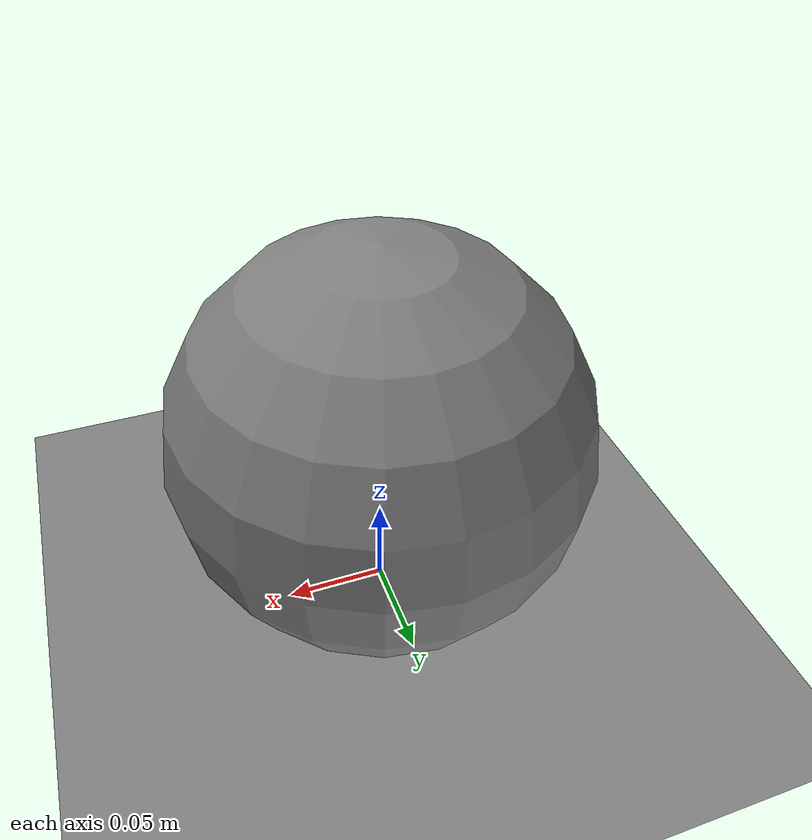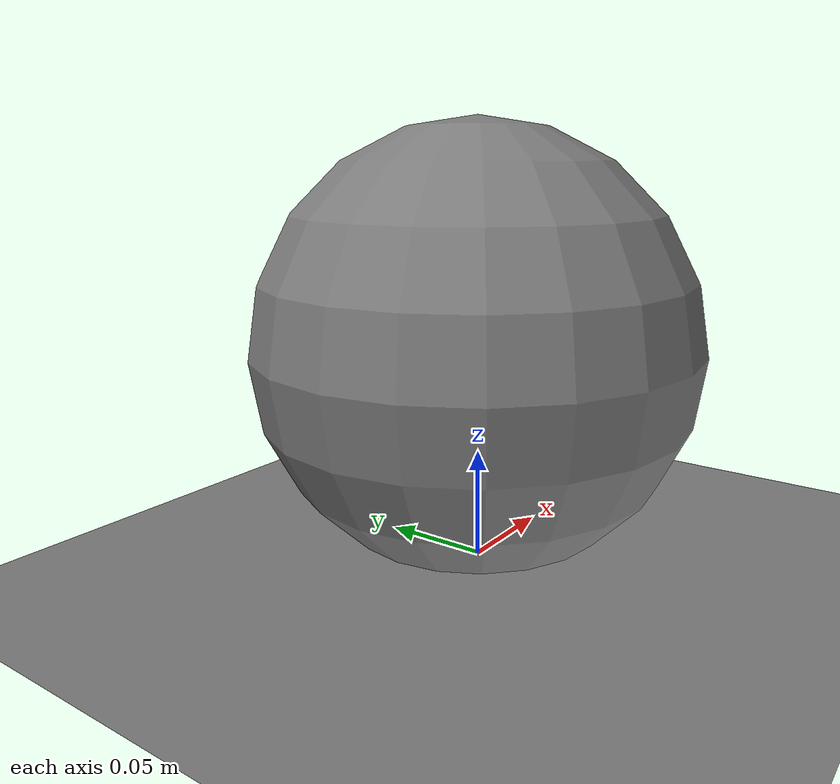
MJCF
<mujoco>
      <option gravity="0 0 -9.81"/>
      <worldbody>
        <geom type="plane" size="5 5 0.1"/>
        <body name="ball" pos="0 0 0.1">
          <freejoint/>
          <geom type="sphere" size="0.1" mass="1.0"/>
          <site name="imu" pos="0 0 0"/>
        </body>
      </worldbody>
      <sensor>
        <accelerometer site="imu"/>
      </sensor>
    </mujoco>
